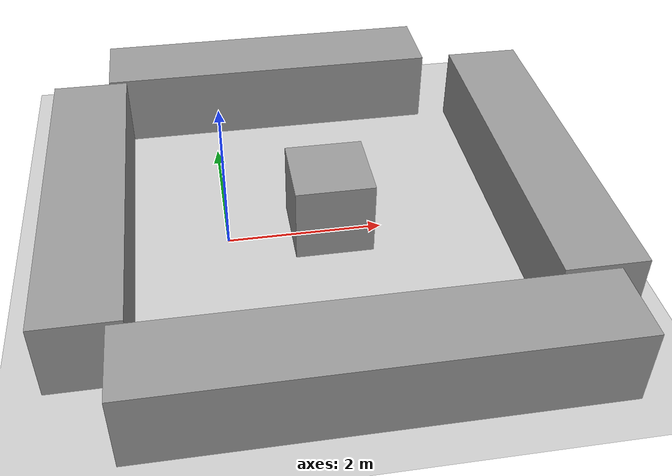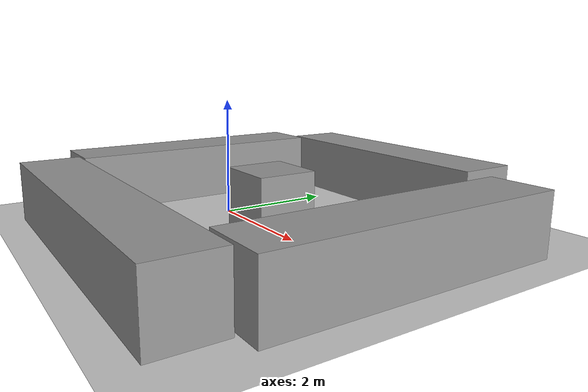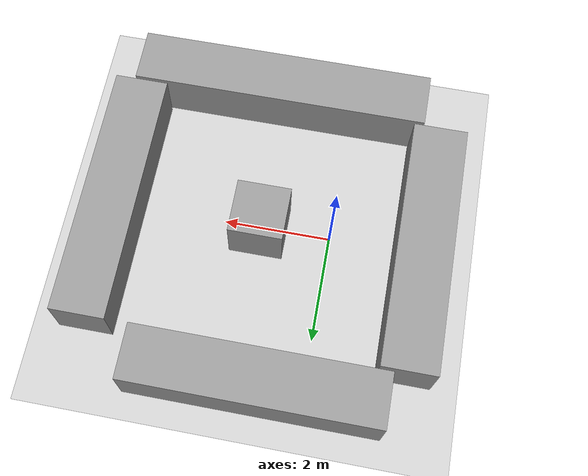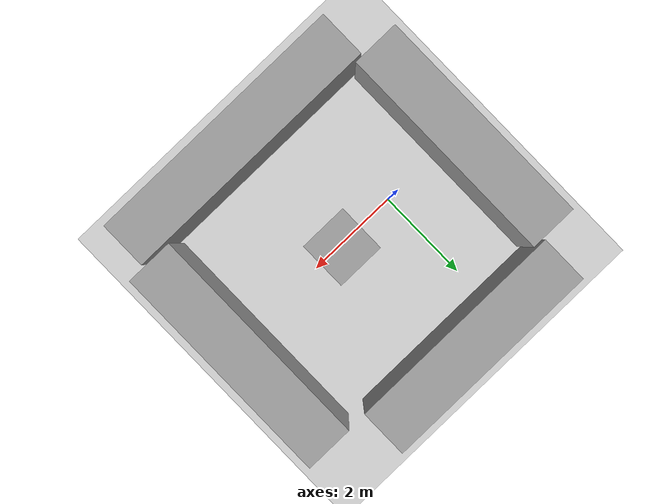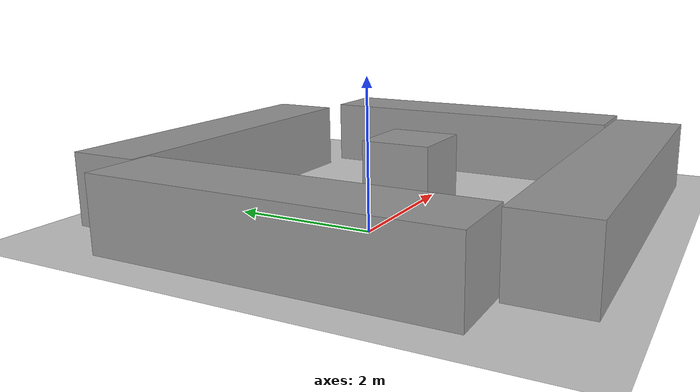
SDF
<sdf version="1.6">
 <world name="default">
  <light name="sun" type="directional">
   <pose>0 0 10 0 -0 0</pose>
   <diffuse>0.8 0.8 0.8 1</diffuse>
   <specular>0.2 0.2 0.2 1</specular>
   <attenuation>
    <range>1000</range>
    <constant>0.9</constant>
    <linear>0.01</linear>
    <quadratic>0.001</quadratic>
   </attenuation>
   <direction>-0.5 0.1 -0.9</direction>
  </light>
  <model name="ground_plane">
   <static>1</static>
   <link name="link">
    <collision name="collision">
     <geometry><plane><normal>0 0 1</normal><size>100 100</size></plane></geometry>
     <surface>
      <contact><collide_bitmask>65535</collide_bitmask></contact>
      <friction><ode><mu>100</mu><mu2>50</mu2></ode></friction>
     </surface>
    </collision>
    <visual name="visual">
     <cast_shadows>0</cast_shadows>
     <geometry><plane><normal>0 0 1</normal><size>100 100</size></plane></geometry>
     <material>
      <script><uri>file://media/materials/scripts/gazebo.material</uri><name>Gazebo/Grey</name></script>
     </material>
    </visual>
   </link>
  </model>
  <gravity>0 0 -9.8</gravity>
  <magnetic_field>6e-06 2.3e-05 -4.2e-05</magnetic_field>
  <atmosphere type="adiabatic"/>
  <physics name="default_physics" default="0" type="ode">
   <max_step_size>0.001</max_step_size>
   <real_time_factor>1</real_time_factor>
   <real_time_update_rate>1000</real_time_update_rate>
  </physics>
  <scene><ambient>0.4 0.4 0.4 1</ambient><background>0.7 0.7 0.7 1</background><shadows>1</shadows></scene>
  <audio><device>default</device></audio>
  <spherical_coordinates>
   <surface_model>EARTH_WGS84</surface_model>
   <latitude_deg>0</latitude_deg>
   <longitude_deg>0</longitude_deg>
   <elevation>0</elevation>
   <heading_deg>0</heading_deg>
  </spherical_coordinates>
  <model name="unit_box">
   <pose>1.32206 0.047014 0.5 0 -0 0</pose>
   <link name="link">
    <inertial>
     <mass>1</mass>
     <inertia>
      <ixx>0.166667</ixx>
      <ixy>0</ixy>
      <ixz>0</ixz>
      <iyy>0.166667</iyy>
      <iyz>0</iyz>
      <izz>0.166667</izz>
     </inertia>
    </inertial>
    <collision name="collision"><geometry><box><size>1 1 1</size></box></geometry></collision>
    <visual name="visual">
     <geometry><box><size>1 1 1</size></box></geometry>
     <material>
      <script><name>Gazebo/Grey</name><uri>file://media/materials/scripts/gazebo.material</uri></script>
     </material>
    </visual>
   </link>
  </model>
  <model name="unit_box_0">
   <pose>4.05536 0.174706 0.498316 0.000709 -0 -6e-06</pose>
   <link name="link">
    <inertial>
     <mass>1</mass>
     <inertia>
      <ixx>0.166667</ixx>
      <ixy>0</ixy>
      <ixz>0</ixz>
      <iyy>0.166667</iyy>
      <iyz>0</iyz>
      <izz>0.166667</izz>
     </inertia>
    </inertial>
    <collision name="collision"><geometry><box><size>1 4.75457 1</size></box></geometry></collision>
    <visual name="visual">
     <geometry><box><size>1 4.75457 1</size></box></geometry>
     <material>
      <script><name>Gazebo/Grey</name><uri>file://media/materials/scripts/gazebo.material</uri></script>
     </material>
    </visual>
   </link>
  </model>
  <model name="unit_box_1">
   <pose>0.847222 3.02927 0.498559 -0 -0.000627 6e-06</pose>
   <link name="link">
    <inertial>
     <mass>1</mass>
     <inertia>
      <ixx>0.166667</ixx>
      <ixy>0</ixy>
      <ixz>0</ixz>
      <iyy>0.166667</iyy>
      <iyz>0</iyz>
      <izz>0.166667</izz>
     </inertia>
    </inertial>
    <collision name="collision"><geometry><box><size>4.59696 1 1</size></box></geometry></collision>
    <visual name="visual">
     <geometry><box><size>4.59696 1 1</size></box></geometry>
     <material>
      <script><name>Gazebo/Grey</name><uri>file://media/materials/scripts/gazebo.material</uri></script>
     </material>
    </visual>
   </link>
  </model>
  <model name="unit_box_2">
   <pose>1.40131 -2.75808 0.496516 0 0.001249 -5.6e-05</pose>
   <link name="link">
    <inertial>
     <mass>1</mass>
     <inertia>
      <ixx>0.166667</ixx>
      <ixy>0</ixy>
      <ixz>0</ixz>
      <iyy>0.166667</iyy>
      <iyz>0</iyz>
      <izz>0.166667</izz>
     </inertia>
    </inertial>
    <collision name="collision"><geometry><box><size>5.57852 1 1</size></box></geometry></collision>
    <visual name="visual">
     <geometry><box><size>5.57852 1 1</size></box></geometry>
     <material>
      <script><name>Gazebo/Grey</name><uri>file://media/materials/scripts/gazebo.material</uri></script>
     </material>
    </visual>
   </link>
  </model>
  <model name="unit_box_3">
   <pose>-1.70278 0.135994 0.498411 0.000677 -0 -5e-06</pose>
   <link name="link">
    <inertial>
     <mass>1</mass>
     <inertia>
      <ixx>0.166667</ixx>
      <ixy>0</ixy>
      <ixz>0</ixz>
      <iyy>0.166667</iyy>
      <iyz>0</iyz>
      <izz>0.166667</izz>
     </inertia>
    </inertial>
    <collision name="collision"><geometry><box><size>1 4.69522 1</size></box></geometry></collision>
    <visual name="visual">
     <geometry><box><size>1 4.69522 1</size></box></geometry>
     <material>
      <script><name>Gazebo/Grey</name><uri>file://media/materials/scripts/gazebo.material</uri></script>
     </material>
    </visual>
   </link>
  </model>
 </world>
</sdf>
